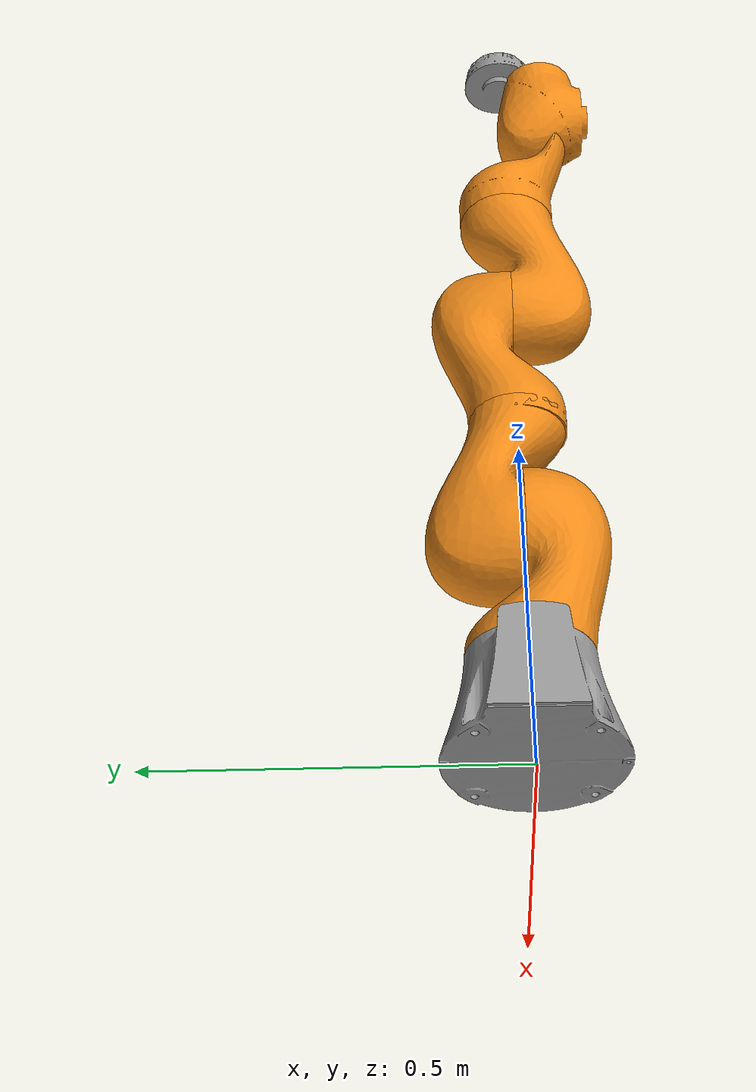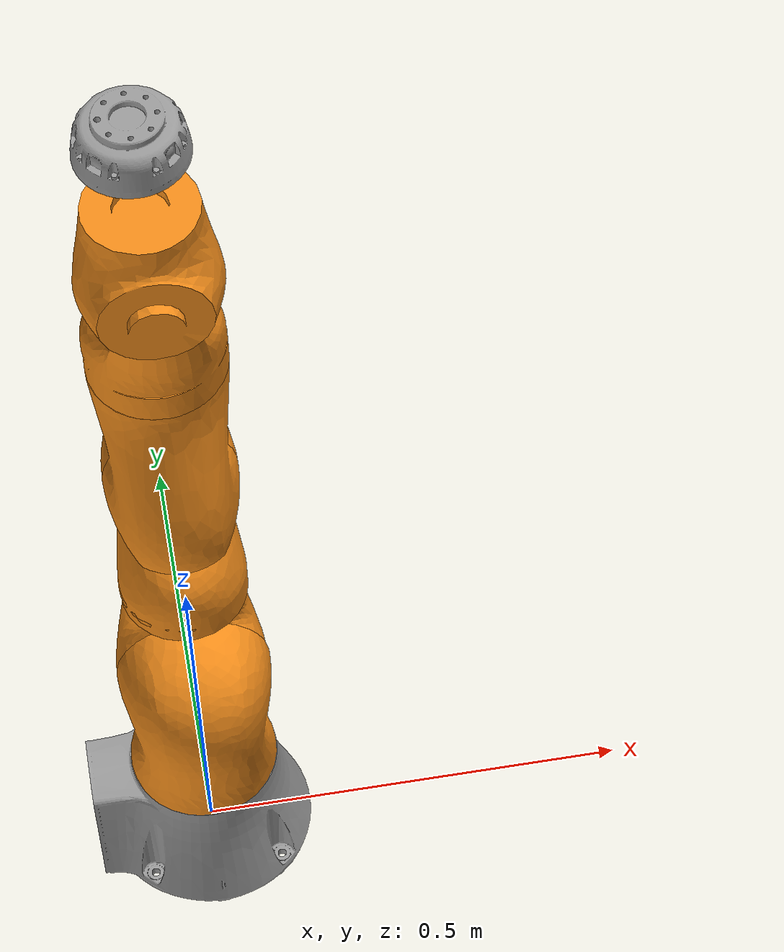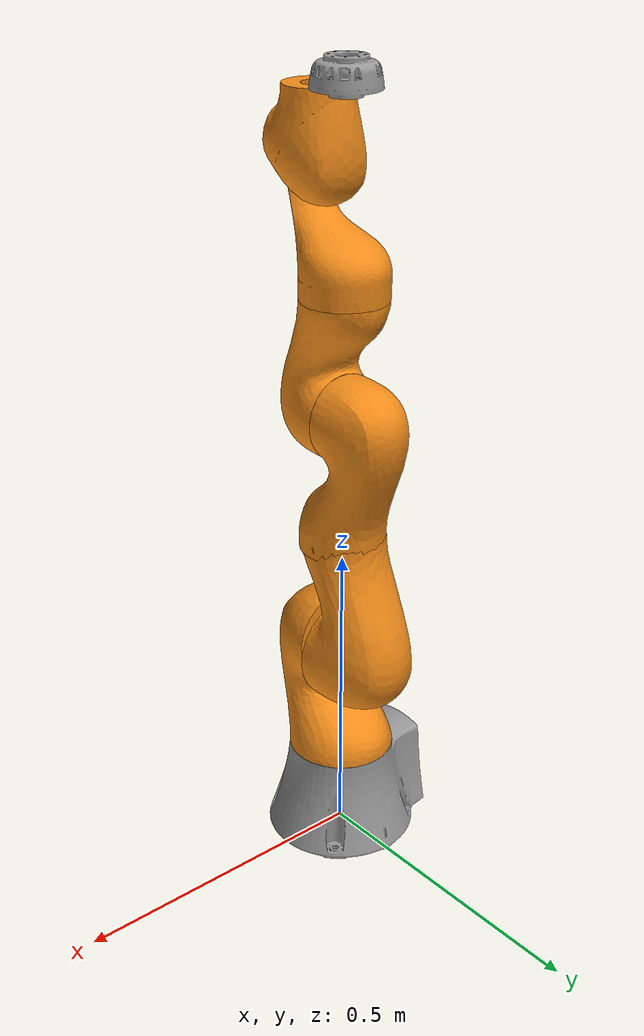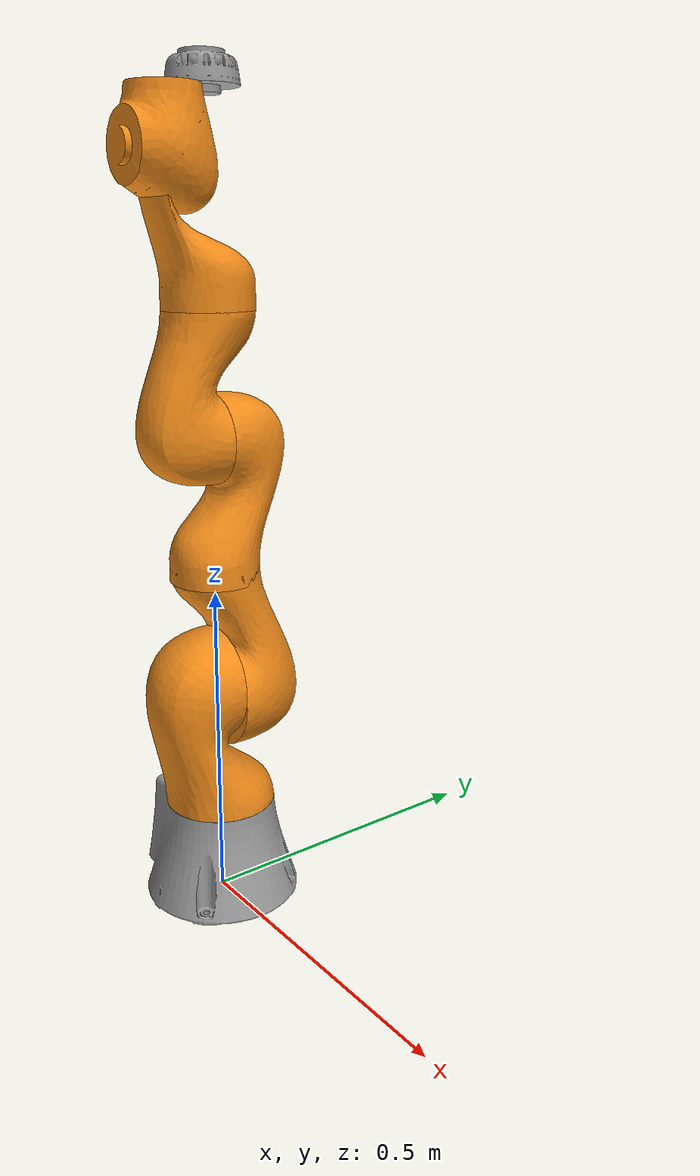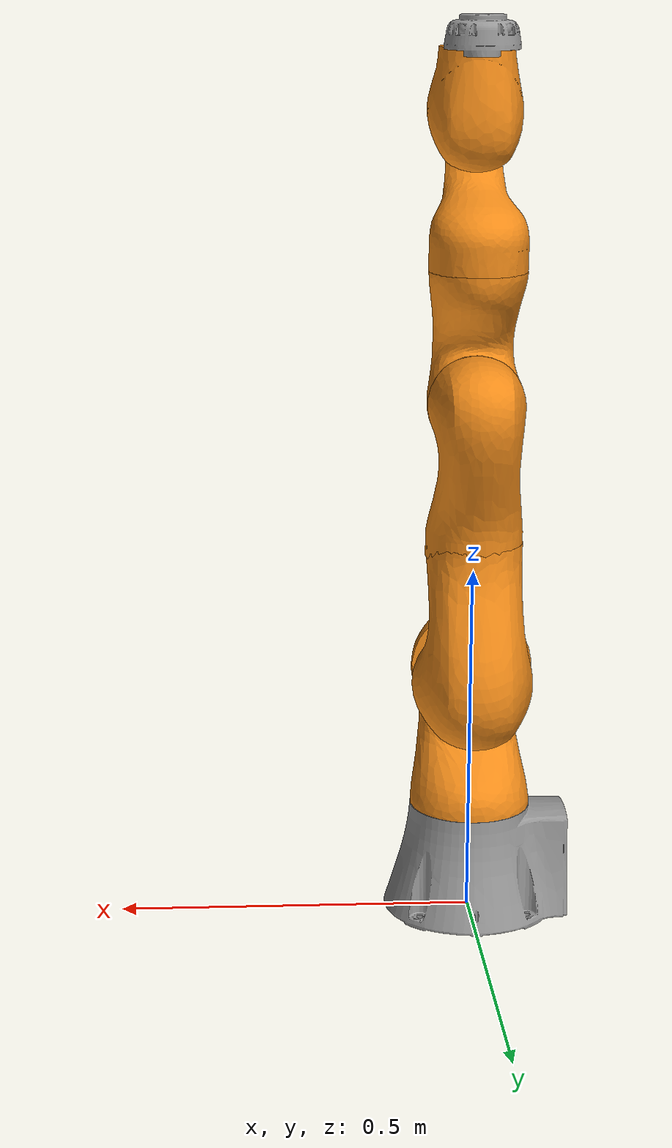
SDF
<?xml version='1.0'?>
<sdf version='1.6'>
  <model name='iiwa'>
    <link name='iiwa_link_0'>
      <pose frame=''>0 0 0 0 -0 0</pose>
      <inertial>
        <pose frame=''>-0.1 0 0.07 0 -0 0</pose>
        <mass>5</mass>
        <inertia>
          <ixx>0.05</ixx>
          <ixy>0</ixy>
          <ixz>0</ixz>
          <iyy>0.06</iyy>
          <iyz>0</iyz>
          <izz>0.03</izz>
        </inertia>
      </inertial>
      <gravity>1</gravity>
      <velocity_decay/>
      <self_collide>0</self_collide>
      <enable_wind>0</enable_wind>
      <kinematic>0</kinematic>
      <visual name='iiwa_link_0_visual'>
        <pose frame=''>0 0 0 0 -0 0</pose>
        <geometry>
          <mesh>
            <scale>1 1 1</scale>
            <uri>/home/snehal/Desktop/Thesis/IfO/KUKA_Task/ros_ws/src/iiwa_stack/iiwa_description/meshes/iiwa7/visual/link_0.stl</uri>
          </mesh>
        </geometry>
        <material>
          <script>
            <name>Gazebo/Grey</name>
            <uri>file://media/materials/scripts/gazebo.material</uri>
          </script>
        </material>
        <transparency>0</transparency>
        <cast_shadows>1</cast_shadows>
      </visual>
      <collision name='iiwa_link_0_collision'>
        <laser_retro>0</laser_retro>
        <max_contacts>10</max_contacts>
        <pose frame=''>0 0 0 0 -0 0</pose>
        <geometry>
          <mesh>
            <uri>/home/snehal/Desktop/Thesis/IfO/KUKA_Task/ros_ws/src/iiwa_stack/iiwa_description/meshes/iiwa7/collision/link_0.stl</uri>
            <scale>1 1 1</scale>
          </mesh>
        </geometry>
        <surface>
          <friction>
            <ode>
              <mu>0.2</mu>
              <mu2>0.2</mu2>
              <fdir1>0 0 0</fdir1>
              <slip1>0</slip1>
              <slip2>0</slip2>
            </ode>
            <torsional>
              <coefficient>1</coefficient>
              <patch_radius>0</patch_radius>
              <surface_radius>0</surface_radius>
              <use_patch_radius>1</use_patch_radius>
              <ode>
                <slip>0</slip>
              </ode>
            </torsional>
          </friction>
          <bounce>
            <restitution_coefficient>0</restitution_coefficient>
            <threshold>1e+06</threshold>
          </bounce>
          <contact>
            <collide_without_contact>0</collide_without_contact>
            <collide_without_contact_bitmask>1</collide_without_contact_bitmask>
            <collide_bitmask>1</collide_bitmask>
            <ode>
              <soft_cfm>0</soft_cfm>
              <soft_erp>0.2</soft_erp>
              <kp>1e+13</kp>
              <kd>1</kd>
              <max_vel>0.01</max_vel>
              <min_depth>0</min_depth>
            </ode>
            <bullet>
              <split_impulse>1</split_impulse>
              <split_impulse_penetration_threshold>-0.01</split_impulse_penetration_threshold>
              <soft_cfm>0</soft_cfm>
              <soft_erp>0.2</soft_erp>
              <kp>1e+13</kp>
              <kd>1</kd>
            </bullet>
          </contact>
        </surface>
      </collision>
    </link>
    <link name='iiwa_link_1'>
      <pose frame=''>-0 -0 0.15 0 -0 0</pose>
      <inertial>
        <pose frame=''>0 -0.03 0.12 0 -0 0</pose>
        <mass>3.4525</mass>
        <inertia>
          <ixx>0.02183</ixx>
          <ixy>0</ixy>
          <ixz>0</ixz>
          <iyy>0.007703</iyy>
          <iyz>-0.003887</iyz>
          <izz>0.02083</izz>
        </inertia>
      </inertial>
      <gravity>1</gravity>
      <velocity_decay/>
      <self_collide>0</self_collide>
      <enable_wind>0</enable_wind>
      <kinematic>0</kinematic>
      <visual name='iiwa_link_1_visual'>
        <pose frame=''>0 0 0.0075 0 -0 0</pose>
        <geometry>
          <mesh>
            <scale>1 1 1</scale>
            <uri>/home/snehal/Desktop/Thesis/IfO/KUKA_Task/ros_ws/src/iiwa_stack/iiwa_description/meshes/iiwa7/visual/link_1.stl</uri>
          </mesh>
        </geometry>
        <material>
          <script>
            <name>Gazebo/Orange</name>
            <uri>file://media/materials/scripts/gazebo.material</uri>
          </script>
        </material>
        <transparency>0</transparency>
        <cast_shadows>1</cast_shadows>
      </visual>
      <collision name='iiwa_link_1_collision'>
        <laser_retro>0</laser_retro>
        <max_contacts>10</max_contacts>
        <pose frame=''>0 0 0.0075 0 -0 0</pose>
        <geometry>
          <mesh>
            <uri>/home/snehal/Desktop/Thesis/IfO/KUKA_Task/ros_ws/src/iiwa_stack/iiwa_description/meshes/iiwa7/collision/link_1.stl</uri>
            <scale>1 1 1</scale>
          </mesh>
        </geometry>
        <surface>
          <friction>
            <ode>
              <mu>0.2</mu>
              <mu2>0.2</mu2>
              <fdir1>0 0 0</fdir1>
              <slip1>0</slip1>
              <slip2>0</slip2>
            </ode>
            <torsional>
              <coefficient>1</coefficient>
              <patch_radius>0</patch_radius>
              <surface_radius>0</surface_radius>
              <use_patch_radius>1</use_patch_radius>
              <ode>
                <slip>0</slip>
              </ode>
            </torsional>
          </friction>
          <bounce>
            <restitution_coefficient>0</restitution_coefficient>
            <threshold>1e+06</threshold>
          </bounce>
          <contact>
            <collide_without_contact>0</collide_without_contact>
            <collide_without_contact_bitmask>1</collide_without_contact_bitmask>
            <collide_bitmask>1</collide_bitmask>
            <ode>
              <soft_cfm>0</soft_cfm>
              <soft_erp>0.2</soft_erp>
              <kp>1e+13</kp>
              <kd>1</kd>
              <max_vel>0.01</max_vel>
              <min_depth>0</min_depth>
            </ode>
            <bullet>
              <split_impulse>1</split_impulse>
              <split_impulse_penetration_threshold>-0.01</split_impulse_penetration_threshold>
              <soft_cfm>0</soft_cfm>
              <soft_erp>0.2</soft_erp>
              <kp>1e+13</kp>
              <kd>1</kd>
            </bullet>
          </contact>
        </surface>
      </collision>
    </link>
    <link name='iiwa_link_2'>
      <pose frame=''>-0 0 0.34 1.5708 -0 -3.14159</pose>
      <inertial>
        <pose frame=''>0.0003 0.059 0.042 0 -0 0</pose>
        <mass>3.4821</mass>
        <inertia>
          <ixx>0.02076</ixx>
          <ixy>0</ixy>
          <ixz>-0.003626</ixz>
          <iyy>0.02179</iyy>
          <iyz>0</iyz>
          <izz>0.00779</izz>
        </inertia>
      </inertial>
      <gravity>1</gravity>
      <velocity_decay/>
      <self_collide>0</self_collide>
      <enable_wind>0</enable_wind>
      <kinematic>0</kinematic>
      <visual name='iiwa_link_2_visual'>
        <pose frame=''>0 0 0 0 -0 0</pose>
        <geometry>
          <mesh>
            <scale>1 1 1</scale>
            <uri>/home/snehal/Desktop/Thesis/IfO/KUKA_Task/ros_ws/src/iiwa_stack/iiwa_description/meshes/iiwa7/visual/link_2.stl</uri>
          </mesh>
        </geometry>
        <material>
          <script>
            <name>Gazebo/Orange</name>
            <uri>file://media/materials/scripts/gazebo.material</uri>
          </script>
        </material>
        <transparency>0</transparency>
        <cast_shadows>1</cast_shadows>
      </visual>
      <collision name='iiwa_link_2_collision'>
        <laser_retro>0</laser_retro>
        <max_contacts>10</max_contacts>
        <pose frame=''>0 0 0 0 -0 0</pose>
        <geometry>
          <mesh>
            <uri>/home/snehal/Desktop/Thesis/IfO/KUKA_Task/ros_ws/src/iiwa_stack/iiwa_description/meshes/iiwa7/collision/link_2.stl</uri>
            <scale>1 1 1</scale>
          </mesh>
        </geometry>
        <surface>
          <friction>
            <ode>
              <mu>0.2</mu>
              <mu2>0.2</mu2>
              <fdir1>0 0 0</fdir1>
              <slip1>0</slip1>
              <slip2>0</slip2>
            </ode>
            <torsional>
              <coefficient>1</coefficient>
              <patch_radius>0</patch_radius>
              <surface_radius>0</surface_radius>
              <use_patch_radius>1</use_patch_radius>
              <ode>
                <slip>0</slip>
              </ode>
            </torsional>
          </friction>
          <bounce>
            <restitution_coefficient>0</restitution_coefficient>
            <threshold>1e+06</threshold>
          </bounce>
          <contact>
            <collide_without_contact>0</collide_without_contact>
            <collide_without_contact_bitmask>1</collide_without_contact_bitmask>
            <collide_bitmask>1</collide_bitmask>
            <ode>
              <soft_cfm>0</soft_cfm>
              <soft_erp>0.2</soft_erp>
              <kp>1e+13</kp>
              <kd>1</kd>
              <max_vel>0.01</max_vel>
              <min_depth>0</min_depth>
            </ode>
            <bullet>
              <split_impulse>1</split_impulse>
              <split_impulse_penetration_threshold>-0.01</split_impulse_penetration_threshold>
              <soft_cfm>0</soft_cfm>
              <soft_erp>0.2</soft_erp>
              <kp>1e+13</kp>
              <kd>1</kd>
            </bullet>
          </contact>
        </surface>
      </collision>
    </link>
    <link name='iiwa_link_3'>
      <pose frame=''>0 -0 0.55 0 -0 0</pose>
      <inertial>
        <pose frame=''>0 0.03 0.13 0 -0 0</pose>
        <mass>4.05623</mass>
        <inertia>
          <ixx>0.03204</ixx>
          <ixy>0</ixy>
          <ixz>0</ixz>
          <iyy>0.00972</iyy>
          <iyz>0.006227</iyz>
          <izz>0.03042</izz>
        </inertia>
      </inertial>
      <gravity>1</gravity>
      <velocity_decay/>
      <self_collide>0</self_collide>
      <enable_wind>0</enable_wind>
      <kinematic>0</kinematic>
      <visual name='iiwa_link_3_visual'>
        <pose frame=''>0 0 -0.026 0 -0 0</pose>
        <geometry>
          <mesh>
            <scale>1 1 1</scale>
            <uri>/home/snehal/Desktop/Thesis/IfO/KUKA_Task/ros_ws/src/iiwa_stack/iiwa_description/meshes/iiwa7/visual/link_3.stl</uri>
          </mesh>
        </geometry>
        <material>
          <script>
            <name>Gazebo/Orange</name>
            <uri>file://media/materials/scripts/gazebo.material</uri>
          </script>
        </material>
        <transparency>0</transparency>
        <cast_shadows>1</cast_shadows>
      </visual>
      <collision name='iiwa_link_3_collision'>
        <laser_retro>0</laser_retro>
        <max_contacts>10</max_contacts>
        <pose frame=''>0 0 -0.026 0 -0 0</pose>
        <geometry>
          <mesh>
            <uri>/home/snehal/Desktop/Thesis/IfO/KUKA_Task/ros_ws/src/iiwa_stack/iiwa_description/meshes/iiwa7/collision/link_3.stl</uri>
            <scale>1 1 1</scale>
          </mesh>
        </geometry>
        <surface>
          <friction>
            <ode>
              <mu>0.2</mu>
              <mu2>0.2</mu2>
              <fdir1>0 0 0</fdir1>
              <slip1>0</slip1>
              <slip2>0</slip2>
            </ode>
            <torsional>
              <coefficient>1</coefficient>
              <patch_radius>0</patch_radius>
              <surface_radius>0</surface_radius>
              <use_patch_radius>1</use_patch_radius>
              <ode>
                <slip>0</slip>
              </ode>
            </torsional>
          </friction>
          <bounce>
            <restitution_coefficient>0</restitution_coefficient>
            <threshold>1e+06</threshold>
          </bounce>
          <contact>
            <collide_without_contact>0</collide_without_contact>
            <collide_without_contact_bitmask>1</collide_without_contact_bitmask>
            <collide_bitmask>1</collide_bitmask>
            <ode>
              <soft_cfm>0</soft_cfm>
              <soft_erp>0.2</soft_erp>
              <kp>1e+13</kp>
              <kd>1</kd>
              <max_vel>0.01</max_vel>
              <min_depth>0</min_depth>
            </ode>
            <bullet>
              <split_impulse>1</split_impulse>
              <split_impulse_penetration_threshold>-0.01</split_impulse_penetration_threshold>
              <soft_cfm>0</soft_cfm>
              <soft_erp>0.2</soft_erp>
              <kp>1e+13</kp>
              <kd>1</kd>
            </bullet>
          </contact>
        </surface>
      </collision>
    </link>
    <link name='iiwa_link_4'>
      <pose frame=''>0 -0 0.74 1.5708 -0 0</pose>
      <inertial>
        <pose frame=''>0 0.067 0.034 0 -0 0</pose>
        <mass>3.4822</mass>
        <inertia>
          <ixx>0.02178</ixx>
          <ixy>0</ixy>
          <ixz>0</ixz>
          <iyy>0.02075</iyy>
          <iyz>-0.003625</iyz>
          <izz>0.007785</izz>
        </inertia>
      </inertial>
      <gravity>1</gravity>
      <velocity_decay/>
      <self_collide>0</self_collide>
      <enable_wind>0</enable_wind>
      <kinematic>0</kinematic>
      <visual name='iiwa_link_4_visual'>
        <pose frame=''>0 0 0 0 -0 0</pose>
        <geometry>
          <mesh>
            <scale>1 1 1</scale>
            <uri>/home/snehal/Desktop/Thesis/IfO/KUKA_Task/ros_ws/src/iiwa_stack/iiwa_description/meshes/iiwa7/visual/link_4.stl</uri>
          </mesh>
        </geometry>
        <material>
          <script>
            <name>Gazebo/Orange</name>
            <uri>file://media/materials/scripts/gazebo.material</uri>
          </script>
        </material>
        <transparency>0</transparency>
        <cast_shadows>1</cast_shadows>
      </visual>
      <collision name='iiwa_link_4_collision'>
        <laser_retro>0</laser_retro>
        <max_contacts>10</max_contacts>
        <pose frame=''>0 0 0 0 -0 0</pose>
        <geometry>
          <mesh>
            <uri>/home/snehal/Desktop/Thesis/IfO/KUKA_Task/ros_ws/src/iiwa_stack/iiwa_description/meshes/iiwa7/collision/link_4.stl</uri>
            <scale>1 1 1</scale>
          </mesh>
        </geometry>
        <surface>
          <friction>
            <ode>
              <mu>0.2</mu>
              <mu2>0.2</mu2>
              <fdir1>0 0 0</fdir1>
              <slip1>0</slip1>
              <slip2>0</slip2>
            </ode>
            <torsional>
              <coefficient>1</coefficient>
              <patch_radius>0</patch_radius>
              <surface_radius>0</surface_radius>
              <use_patch_radius>1</use_patch_radius>
              <ode>
                <slip>0</slip>
              </ode>
            </torsional>
          </friction>
          <bounce>
            <restitution_coefficient>0</restitution_coefficient>
            <threshold>1e+06</threshold>
          </bounce>
          <contact>
            <collide_without_contact>0</collide_without_contact>
            <collide_without_contact_bitmask>1</collide_without_contact_bitmask>
            <collide_bitmask>1</collide_bitmask>
            <ode>
              <soft_cfm>0</soft_cfm>
              <soft_erp>0.2</soft_erp>
              <kp>1e+13</kp>
              <kd>1</kd>
              <max_vel>0.01</max_vel>
              <min_depth>0</min_depth>
            </ode>
            <bullet>
              <split_impulse>1</split_impulse>
              <split_impulse_penetration_threshold>-0.01</split_impulse_penetration_threshold>
              <soft_cfm>0</soft_cfm>
              <soft_erp>0.2</soft_erp>
              <kp>1e+13</kp>
              <kd>1</kd>
            </bullet>
          </contact>
        </surface>
      </collision>
    </link>
    <link name='iiwa_link_5'>
      <pose frame=''>0 -0 0.95 -0 -0 -3.14159</pose>
      <inertial>
        <pose frame=''>0.0001 0.021 0.076 0 -0 0</pose>
        <mass>2.1633</mass>
        <inertia>
          <ixx>0.01287</ixx>
          <ixy>0</ixy>
          <ixz>0</ixz>
          <iyy>0.005708</iyy>
          <iyz>-0.003946</iyz>
          <izz>0.01112</izz>
        </inertia>
      </inertial>
      <gravity>1</gravity>
      <velocity_decay/>
      <self_collide>0</self_collide>
      <enable_wind>0</enable_wind>
      <kinematic>0</kinematic>
      <visual name='iiwa_link_5_visual'>
        <pose frame=''>0 0 -0.026 0 -0 0</pose>
        <geometry>
          <mesh>
            <scale>1 1 1</scale>
            <uri>/home/snehal/Desktop/Thesis/IfO/KUKA_Task/ros_ws/src/iiwa_stack/iiwa_description/meshes/iiwa7/visual/link_5.stl</uri>
          </mesh>
        </geometry>
        <material>
          <script>
            <name>Gazebo/Orange</name>
            <uri>file://media/materials/scripts/gazebo.material</uri>
          </script>
        </material>
        <transparency>0</transparency>
        <cast_shadows>1</cast_shadows>
      </visual>
      <collision name='iiwa_link_5_collision'>
        <laser_retro>0</laser_retro>
        <max_contacts>10</max_contacts>
        <pose frame=''>0 0 -0.026 0 -0 0</pose>
        <geometry>
          <mesh>
            <uri>/home/snehal/Desktop/Thesis/IfO/KUKA_Task/ros_ws/src/iiwa_stack/iiwa_description/meshes/iiwa7/collision/link_5.stl</uri>
            <scale>1 1 1</scale>
          </mesh>
        </geometry>
        <surface>
          <friction>
            <ode>
              <mu>0.2</mu>
              <mu2>0.2</mu2>
              <fdir1>0 0 0</fdir1>
              <slip1>0</slip1>
              <slip2>0</slip2>
            </ode>
            <torsional>
              <coefficient>1</coefficient>
              <patch_radius>0</patch_radius>
              <surface_radius>0</surface_radius>
              <use_patch_radius>1</use_patch_radius>
              <ode>
                <slip>0</slip>
              </ode>
            </torsional>
          </friction>
          <bounce>
            <restitution_coefficient>0</restitution_coefficient>
            <threshold>1e+06</threshold>
          </bounce>
          <contact>
            <collide_without_contact>0</collide_without_contact>
            <collide_without_contact_bitmask>1</collide_without_contact_bitmask>
            <collide_bitmask>1</collide_bitmask>
            <ode>
              <soft_cfm>0</soft_cfm>
              <soft_erp>0.2</soft_erp>
              <kp>1e+13</kp>
              <kd>1</kd>
              <max_vel>0.01</max_vel>
              <min_depth>0</min_depth>
            </ode>
            <bullet>
              <split_impulse>1</split_impulse>
              <split_impulse_penetration_threshold>-0.01</split_impulse_penetration_threshold>
              <soft_cfm>0</soft_cfm>
              <soft_erp>0.2</soft_erp>
              <kp>1e+13</kp>
              <kd>1</kd>
            </bullet>
          </contact>
        </surface>
      </collision>
    </link>
    <link name='iiwa_link_6'>
      <pose frame=''>-0 -0.0607 1.14 1.5708 -0 -3.14159</pose>
      <inertial>
        <pose frame=''>0 0.0006 0.0004 0 -0 0</pose>
        <mass>2.3466</mass>
        <inertia>
          <ixx>0.006509</ixx>
          <ixy>0</ixy>
          <ixz>0</ixz>
          <iyy>0.006259</iyy>
          <iyz>0.00031891</iyz>
          <izz>0.004527</izz>
        </inertia>
      </inertial>
      <gravity>1</gravity>
      <velocity_decay/>
      <self_collide>0</self_collide>
      <enable_wind>0</enable_wind>
      <kinematic>0</kinematic>
      <visual name='iiwa_link_6_visual'>
        <pose frame=''>0 0 0 0 -0 0</pose>
        <geometry>
          <mesh>
            <scale>1 1 1</scale>
            <uri>/home/snehal/Desktop/Thesis/IfO/KUKA_Task/ros_ws/src/iiwa_stack/iiwa_description/meshes/iiwa7/visual/link_6.stl</uri>
          </mesh>
        </geometry>
        <material>
          <script>
            <name>Gazebo/Orange</name>
            <uri>file://media/materials/scripts/gazebo.material</uri>
          </script>
        </material>
        <transparency>0</transparency>
        <cast_shadows>1</cast_shadows>
      </visual>
      <collision name='iiwa_link_6_collision'>
        <laser_retro>0</laser_retro>
        <max_contacts>10</max_contacts>
        <pose frame=''>0 0 0 0 -0 0</pose>
        <geometry>
          <mesh>
            <uri>/home/snehal/Desktop/Thesis/IfO/KUKA_Task/ros_ws/src/iiwa_stack/iiwa_description/meshes/iiwa7/collision/link_6.stl</uri>
            <scale>1 1 1</scale>
          </mesh>
        </geometry>
        <surface>
          <friction>
            <ode>
              <mu>0.2</mu>
              <mu2>0.2</mu2>
              <fdir1>0 0 0</fdir1>
              <slip1>0</slip1>
              <slip2>0</slip2>
            </ode>
            <torsional>
              <coefficient>1</coefficient>
              <patch_radius>0</patch_radius>
              <surface_radius>0</surface_radius>
              <use_patch_radius>1</use_patch_radius>
              <ode>
                <slip>0</slip>
              </ode>
            </torsional>
          </friction>
          <bounce>
            <restitution_coefficient>0</restitution_coefficient>
            <threshold>1e+06</threshold>
          </bounce>
          <contact>
            <collide_without_contact>0</collide_without_contact>
            <collide_without_contact_bitmask>1</collide_without_contact_bitmask>
            <collide_bitmask>1</collide_bitmask>
            <ode>
              <soft_cfm>0</soft_cfm>
              <soft_erp>0.2</soft_erp>
              <kp>1e+13</kp>
              <kd>1</kd>
              <max_vel>0.01</max_vel>
              <min_depth>0</min_depth>
            </ode>
            <bullet>
              <split_impulse>1</split_impulse>
              <split_impulse_penetration_threshold>-0.01</split_impulse_penetration_threshold>
              <soft_cfm>0</soft_cfm>
              <soft_erp>0.2</soft_erp>
              <kp>1e+13</kp>
              <kd>1</kd>
            </bullet>
          </contact>
        </surface>
      </collision>
    </link>
    <link name='iiwa_link_7'>
      <pose frame=''>-0 0 1.221 0 -0 0</pose>
      <inertial>
        <pose frame=''>0 0 0.02 0 -0 0</pose>
        <mass>3.129</mass>
        <inertia>
          <ixx>0.01464</ixx>
          <ixy>0.0005912</ixy>
          <ixz>0</ixz>
          <iyy>0.01465</iyy>
          <iyz>0</iyz>
          <izz>0.002872</izz>
        </inertia>
      </inertial>
      <gravity>1</gravity>
      <velocity_decay/>
      <self_collide>0</self_collide>
      <enable_wind>0</enable_wind>
      <kinematic>0</kinematic>
      <visual name='iiwa_link_7_visual'>
        <pose frame=''>0 0 -0.0005 0 -0 0</pose>
        <geometry>
          <mesh>
            <scale>1 1 1</scale>
            <uri>/home/snehal/Desktop/Thesis/IfO/KUKA_Task/ros_ws/src/iiwa_stack/iiwa_description/meshes/iiwa7/visual/link_7.stl</uri>
          </mesh>
        </geometry>
        <material>
          <script>
            <name>Gazebo/Grey</name>
            <uri>file://media/materials/scripts/gazebo.material</uri>
          </script>
        </material>
        <transparency>0</transparency>
        <cast_shadows>1</cast_shadows>
      </visual>
      <collision name='iiwa_link_7_collision'>
        <laser_retro>0</laser_retro>
        <max_contacts>10</max_contacts>
        <pose frame=''>0 0 -0.0005 0 -0 0</pose>
        <geometry>
          <mesh>
            <uri>/home/snehal/Desktop/Thesis/IfO/KUKA_Task/ros_ws/src/iiwa_stack/iiwa_description/meshes/iiwa7/collision/link_7.stl</uri>
            <scale>1 1 1</scale>
          </mesh>
        </geometry>
        <surface>
          <friction>
            <ode>
              <mu>0.2</mu>
              <mu2>0.2</mu2>
              <fdir1>0 0 0</fdir1>
              <slip1>0</slip1>
              <slip2>0</slip2>
            </ode>
            <torsional>
              <coefficient>1</coefficient>
              <patch_radius>0</patch_radius>
              <surface_radius>0</surface_radius>
              <use_patch_radius>1</use_patch_radius>
              <ode>
                <slip>0</slip>
              </ode>
            </torsional>
          </friction>
          <bounce>
            <restitution_coefficient>0</restitution_coefficient>
            <threshold>1e+06</threshold>
          </bounce>
          <contact>
            <collide_without_contact>0</collide_without_contact>
            <collide_without_contact_bitmask>1</collide_without_contact_bitmask>
            <collide_bitmask>1</collide_bitmask>
            <ode>
              <soft_cfm>0</soft_cfm>
              <soft_erp>0.2</soft_erp>
              <kp>1e+13</kp>
              <kd>1</kd>
              <max_vel>0.01</max_vel>
              <min_depth>0</min_depth>
            </ode>
            <bullet>
              <split_impulse>1</split_impulse>
              <split_impulse_penetration_threshold>-0.01</split_impulse_penetration_threshold>
              <soft_cfm>0</soft_cfm>
              <soft_erp>0.2</soft_erp>
              <kp>1e+13</kp>
              <kd>1</kd>
            </bullet>
          </contact>
        </surface>
      </collision>
    </link>
    <joint name='iiwa_joint_1' type='revolute'>
      <parent>iiwa_link_0</parent>
      <child>iiwa_link_1</child>
      <pose frame=''>0 0 0 0 -0 0</pose>
      <axis>
        <xyz>0 0 1</xyz>
        <use_parent_model_frame>1</use_parent_model_frame>
        <limit>
          <lower>-2.96706</lower>
          <upper>2.96706</upper>
          <effort>300</effort>
          <velocity>10</velocity>
        </limit>
        <dynamics>
          <spring_reference>0</spring_reference>
          <spring_stiffness>0</spring_stiffness>
          <damping>0.5</damping>
          <friction>0</friction>
        </dynamics>
      </axis>
      <physics>
        <ode>
          <limit>
            <cfm>0</cfm>
            <erp>0.2</erp>
          </limit>
          <suspension>
            <cfm>0</cfm>
            <erp>0.2</erp>
          </suspension>
        </ode>
      </physics>
    </joint>
    <joint name='iiwa_joint_2' type='revolute'>
      <parent>iiwa_link_1</parent>
      <child>iiwa_link_2</child>
      <pose frame=''>0 0 0 0 -0 0</pose>
      <axis>
        <xyz>-0 1 0</xyz>
        <use_parent_model_frame>1</use_parent_model_frame>
        <limit>
          <lower>-2.0944</lower>
          <upper>2.0944</upper>
          <effort>300</effort>
          <velocity>10</velocity>
        </limit>
        <dynamics>
          <spring_reference>0</spring_reference>
          <spring_stiffness>0</spring_stiffness>
          <damping>0.5</damping>
          <friction>0</friction>
        </dynamics>
      </axis>
      <physics>
        <ode>
          <limit>
            <cfm>0</cfm>
            <erp>0.2</erp>
          </limit>
          <suspension>
            <cfm>0</cfm>
            <erp>0.2</erp>
          </suspension>
        </ode>
      </physics>
    </joint>
    <joint name='iiwa_joint_3' type='revolute'>
      <parent>iiwa_link_2</parent>
      <child>iiwa_link_3</child>
      <pose frame=''>0 0 0 0 -0 0</pose>
      <axis>
        <xyz>0 0 1</xyz>
        <use_parent_model_frame>1</use_parent_model_frame>
        <limit>
          <lower>-2.96706</lower>
          <upper>2.96706</upper>
          <effort>300</effort>
          <velocity>10</velocity>
        </limit>
        <dynamics>
          <spring_reference>0</spring_reference>
          <spring_stiffness>0</spring_stiffness>
          <damping>0.5</damping>
          <friction>0</friction>
        </dynamics>
      </axis>
      <physics>
        <ode>
          <limit>
            <cfm>0</cfm>
            <erp>0.2</erp>
          </limit>
          <suspension>
            <cfm>0</cfm>
            <erp>0.2</erp>
          </suspension>
        </ode>
      </physics>
    </joint>
    <joint name='iiwa_joint_4' type='revolute'>
      <parent>iiwa_link_3</parent>
      <child>iiwa_link_4</child>
      <pose frame=''>0 0 0 0 -0 0</pose>
      <axis>
        <xyz>0 -1 0</xyz>
        <use_parent_model_frame>1</use_parent_model_frame>
        <limit>
          <lower>-2.0944</lower>
          <upper>2.0944</upper>
          <effort>300</effort>
          <velocity>10</velocity>
        </limit>
        <dynamics>
          <spring_reference>0</spring_reference>
          <spring_stiffness>0</spring_stiffness>
          <damping>0.5</damping>
          <friction>0</friction>
        </dynamics>
      </axis>
      <physics>
        <ode>
          <limit>
            <cfm>0</cfm>
            <erp>0.2</erp>
          </limit>
          <suspension>
            <cfm>0</cfm>
            <erp>0.2</erp>
          </suspension>
        </ode>
      </physics>
    </joint>
    <joint name='iiwa_joint_5' type='revolute'>
      <parent>iiwa_link_4</parent>
      <child>iiwa_link_5</child>
      <pose frame=''>0 0 0 0 -0 0</pose>
      <axis>
        <xyz>0 0 1</xyz>
        <use_parent_model_frame>1</use_parent_model_frame>
        <limit>
          <lower>-2.96706</lower>
          <upper>2.96706</upper>
          <effort>300</effort>
          <velocity>10</velocity>
        </limit>
        <dynamics>
          <spring_reference>0</spring_reference>
          <spring_stiffness>0</spring_stiffness>
          <damping>0.5</damping>
          <friction>0</friction>
        </dynamics>
      </axis>
      <physics>
        <ode>
          <limit>
            <cfm>0</cfm>
            <erp>0.2</erp>
          </limit>
          <suspension>
            <cfm>0</cfm>
            <erp>0.2</erp>
          </suspension>
        </ode>
      </physics>
    </joint>
    <joint name='iiwa_joint_6' type='revolute'>
      <parent>iiwa_link_5</parent>
      <child>iiwa_link_6</child>
      <pose frame=''>0 0 0 0 -0 0</pose>
      <axis>
        <xyz>-0 1 -0</xyz>
        <use_parent_model_frame>1</use_parent_model_frame>
        <limit>
          <lower>-2.0944</lower>
          <upper>2.0944</upper>
          <effort>300</effort>
          <velocity>10</velocity>
        </limit>
        <dynamics>
          <spring_reference>0</spring_reference>
          <spring_stiffness>0</spring_stiffness>
          <damping>0.5</damping>
          <friction>0</friction>
        </dynamics>
      </axis>
      <physics>
        <ode>
          <limit>
            <cfm>0</cfm>
            <erp>0.2</erp>
          </limit>
          <suspension>
            <cfm>0</cfm>
            <erp>0.2</erp>
          </suspension>
        </ode>
      </physics>
    </joint>
    <joint name='iiwa_joint_7' type='revolute'>
      <parent>iiwa_link_6</parent>
      <child>iiwa_link_7</child>
      <pose frame=''>0 0 0 0 -0 0</pose>
      <axis>
        <xyz>0 0 1</xyz>
        <use_parent_model_frame>1</use_parent_model_frame>
        <limit>
          <lower>-3.05433</lower>
          <upper>3.05433</upper>
          <effort>300</effort>
          <velocity>10</velocity>
        </limit>
        <dynamics>
          <spring_reference>0</spring_reference>
          <spring_stiffness>0</spring_stiffness>
          <damping>0.5</damping>
          <friction>0</friction>
        </dynamics>
      </axis>
      <physics>
        <ode>
          <limit>
            <cfm>0</cfm>
            <erp>0.2</erp>
          </limit>
          <suspension>
            <cfm>0</cfm>
            <erp>0.2</erp>
          </suspension>
        </ode>
      </physics>
    </joint>
    <static>0</static>
    <allow_auto_disable>1</allow_auto_disable>
    <plugin name='ft_sensor' filename='libgazebo_ros_ft_sensor.so'>
      <updateRate>50.0</updateRate>
      <topicName>/iiwa/state/CartesianWrench</topicName>
      <jointName>iiwa_joint_7</jointName>
      <robotNamespace>/</robotNamespace>
    </plugin>
  </model>
</sdf>
